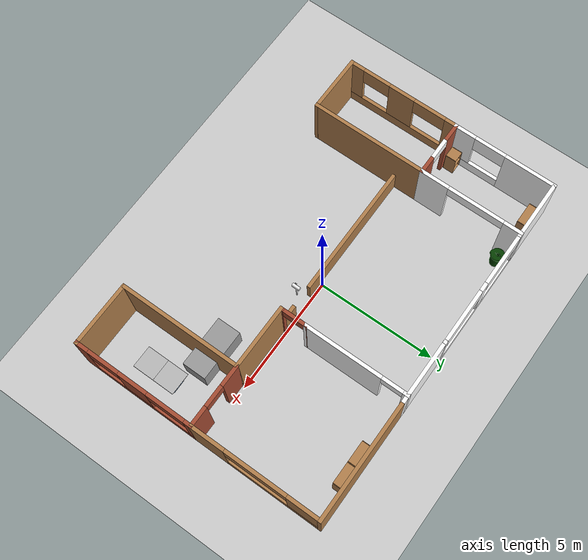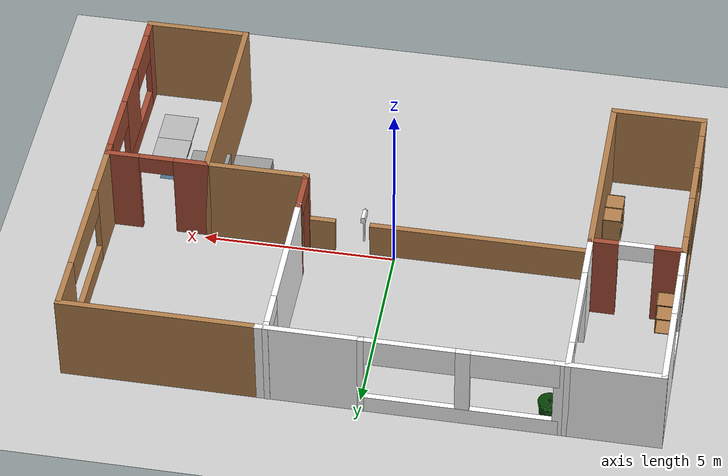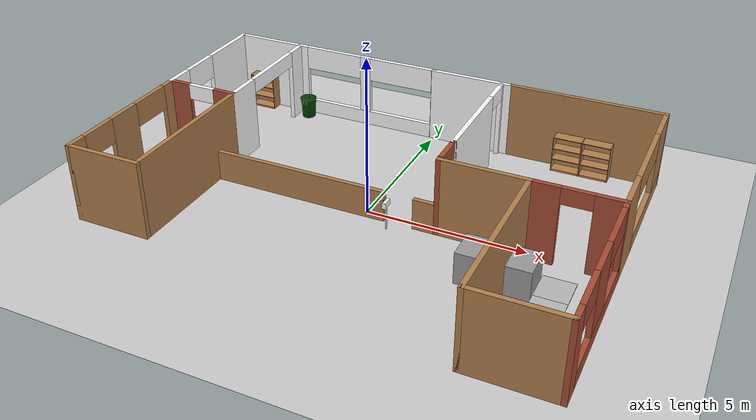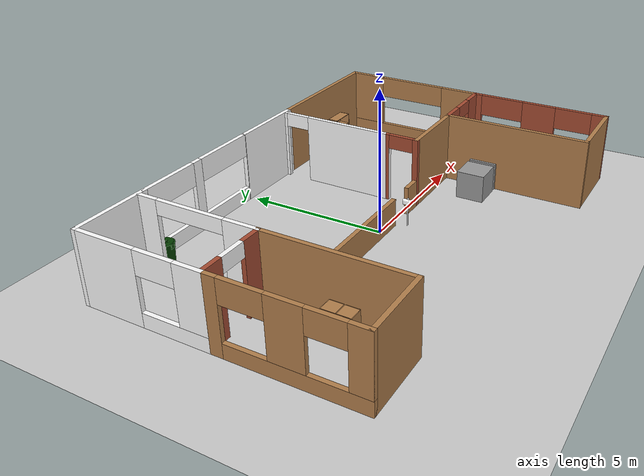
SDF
<sdf version="1.7">
 <world name="default">
  <include><uri>model://turtlebot3_house</uri></include>
  <light name="sun" type="directional">
   <pose>0 0 10 0 -0 0</pose>
   <diffuse>0.8 0.8 0.8 1</diffuse>
   <specular>0.2 0.2 0.2 1</specular>
   <attenuation>
    <range>1000</range>
    <constant>0.9</constant>
    <linear>0.01</linear>
    <quadratic>0.001</quadratic>
   </attenuation>
   <direction>-0.5 0.1 -0.9</direction>
   <spot><inner_angle>0</inner_angle><outer_angle>0</outer_angle><falloff>0</falloff></spot>
  </light>
  <model name="ground_plane">
   <static>1</static>
   <link name="link">
    <collision name="collision">
     <geometry><plane><normal>0 0 1</normal><size>100 100</size></plane></geometry>
     <surface><friction><ode><mu>100</mu><mu2>50</mu2></ode></friction></surface>
    </collision>
    <visual name="visual">
     <cast_shadows>0</cast_shadows>
     <geometry><plane><normal>0 0 1</normal><size>100 100</size></plane></geometry>
     <material>
      <script><uri>file://media/materials/scripts/gazebo.material</uri><name>Gazebo/Grey</name></script>
     </material>
    </visual>
   </link>
  </model>
  <gravity>0 0 -9.8</gravity>
  <magnetic_field>6e-06 2.3e-05 -4.2e-05</magnetic_field>
  <atmosphere type="adiabatic"/>
  <physics type="ode">
   <max_step_size>0.001</max_step_size>
   <real_time_factor>1</real_time_factor>
   <real_time_update_rate>1000</real_time_update_rate>
  </physics>
  <scene><ambient>0.4 0.4 0.4 1</ambient><background>0.7 0.7 0.7 1</background><shadows>1</shadows></scene>
  <spherical_coordinates>
   <surface_model>EARTH_WGS84</surface_model>
   <latitude_deg>0</latitude_deg>
   <longitude_deg>0</longitude_deg>
   <elevation>0</elevation>
   <heading_deg>0</heading_deg>
  </spherical_coordinates>
  <model name="unit_box">
   <pose>5.21967 -1.67227 0.500731 0 0.001464 -0.0004</pose>
   <link name="link">
    <inertial>
     <mass>1</mass>
     <inertia>
      <ixx>0.166667</ixx>
      <ixy>0</ixy>
      <ixz>0</ixz>
      <iyy>0.166667</iyy>
      <iyz>0</iyz>
      <izz>0.166667</izz>
     </inertia>
    </inertial>
    <collision name="collision"><geometry><box><size>1 1 1</size></box></geometry></collision>
    <visual name="visual">
     <geometry><box><size>1 1 1</size></box></geometry>
     <material>
      <script><name>Gazebo/Grey</name><uri>file://media/materials/scripts/gazebo.material</uri></script>
     </material>
    </visual>
   </link>
  </model>
  <model name="unit_box_0">
   <pose>4.08631 -1.67518 0.500534 -1.5e-05 -0.001084 0.001007</pose>
   <link name="link">
    <inertial>
     <mass>1</mass>
     <inertia>
      <ixx>0.166667</ixx>
      <ixy>0</ixy>
      <ixz>0</ixz>
      <iyy>0.166667</iyy>
      <iyz>0</iyz>
      <izz>0.166667</izz>
     </inertia>
    </inertial>
    <collision name="collision"><geometry><box><size>1 1 1</size></box></geometry></collision>
    <visual name="visual">
     <geometry><box><size>1 1 1</size></box></geometry>
     <material>
      <script><name>Gazebo/Grey</name><uri>file://media/materials/scripts/gazebo.material</uri></script>
     </material>
    </visual>
   </link>
  </model>
 </world>
</sdf>
